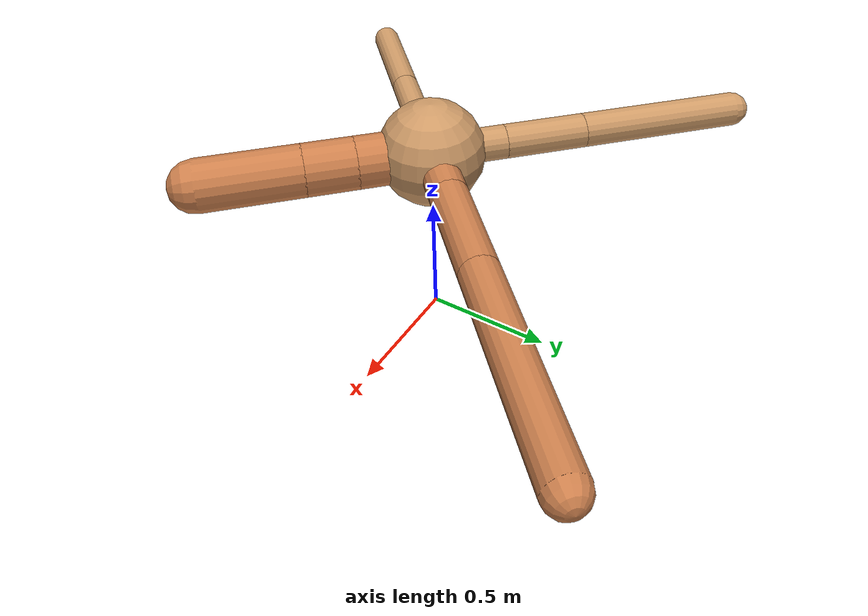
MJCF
<?xml version="1.0" ?>
<mujoco model="ant">

	<compiler angle="degree" coordinate="local" inertiafromgeom="true"/>

	<option integrator="RK4" timestep="0.01"/>

	<custom>

		<numeric data="0.0 0.0 0.55 1.0 0.0 0.0 0.0 0.0 1.0 0.0 -1.0 0.0 -1.0 0.0 1.0" name="init_qpos"/>

	</custom>

	<default>

		<joint armature="1" damping="1" limited="true"/>

		<geom conaffinity="0" condim="3" density="5.0" friction="1.5 0.1 0.1" margin="0.01" rgba="0.8 0.6 0.4 1"/>

	</default>

	<worldbody>

		<body name="torso" pos="0 0 0.75">

			<geom name="torso_geom" pos="0 0 0" size="0.2034293246344938" type="sphere"/>

			<!--joint armature="0" damping="0" limited="false" margin="0.01" name="root" pos="0 0 0" type="free"/-->

			<body name="front_left_leg" pos="0 0 0">

				<geom fromto="0 0 0 0.2 0.2 0" name="aux_1_geom" size="0.07254166942290198" type="capsule" rgba=".8 .5 .3 1"/>

				<body name="aux_1" pos="0.2 0.2 0">

					<joint axis="0 0 1" name="hip_1" pos="0.0 0.0 0.0" range="-40 40" type="hinge"/>

					<geom fromto="0 0 0 0.2906045185933022 0.2906045185933022 0" name="left_leg_geom" size="0.07254166942290198" type="capsule" rgba=".8 .5 .3 1"/>

					<body pos="0.2906045185933022 0.2906045185933022 0" name="front_left_foot">

						<joint axis="-1 1 0" name="ankle_1" pos="0.0 0.0 0.0" range="30 100" type="hinge"/>

						<geom fromto="0 0 0 0.5812090371866044 0.5812090371866044 0" name="left_ankle_geom" size="0.07254166942290198" type="capsule" rgba=".8 .5 .3 1"/>

					</body>

				</body>

			</body>

			<body name="front_right_leg" pos="0 0 0">

				<geom fromto="0 0 0 -0.2 0.2 0" name="aux_2_geom" size="0.0660254491054621" type="capsule"/>

				<body name="aux_2" pos="-0.2 0.2 0">

					<joint axis="0 0 1" name="hip_2" pos="0.0 0.0 0.0" range="-40 40" type="hinge"/>

					<geom fromto="0 0 0 -0.22108874089610714 0.22108874089610714 0" name="right_leg_geom" size="0.0660254491054621" type="capsule"/>

					<body pos="-0.22108874089610714 0.22108874089610714 0" name="front_right_foot">

						<joint axis="1 1 0" name="ankle_2" pos="0.0 0.0 0.0" range="-100 -30" type="hinge"/>

						<geom fromto="0 0 0 -0.4421774817922143 0.4421774817922143 0" name="right_ankle_geom" size="0.0660254491054621" type="capsule"/>

					</body>

				</body>

			</body>

			<body name="left_back_leg" pos="0 0 0">

				<geom fromto="0 0 0 -0.2 -0.2 0" name="aux_3_geom" size="0.052642065968321536" type="capsule"/>

				<body name="aux_3" pos="-0.2 -0.2 0">

					<joint axis="0 0 1" name="hip_3" pos="0.0 0.0 0.0" range="-40 40" type="hinge"/>

					<geom fromto="0 0 0 -0.15424641311256498 -0.15424641311256498 0" name="back_leg_geom" size="0.052642065968321536" type="capsule"/>

					<body pos="-0.15424641311256498 -0.15424641311256498 0" name="left_back_foot">

						<joint axis="-1 1 0" name="ankle_3" pos="0.0 0.0 0.0" range="-100 -30" type="hinge"/>

						<geom fromto="0 0 0 -0.30849282622512997 -0.30849282622512997 0" name="third_ankle_geom" size="0.052642065968321536" type="capsule"/>

					</body>

				</body>

			</body>

			<body name="right_back_leg" pos="0 0 0">

				<geom fromto="0 0 0 0.2 -0.2 0" name="aux_4_geom" size="0.1004400274302315" type="capsule" rgba=".8 .5 .3 1"/>

				<body name="aux_4" pos="0.2 -0.2 0">

					<joint axis="0 0 1" name="hip_4" pos="0.0 0.0 0.0" range="-40 40" type="hinge"/>

					<geom fromto="0 0 0 0.13484238228584236 -0.13484238228584236 0" name="rightback_leg_geom" size="0.1004400274302315" type="capsule" rgba=".8 .5 .3 1"/>

					<body pos="0.13484238228584236 -0.13484238228584236 0" name="right_back_foot">

						<joint axis="1 1 0" name="ankle_4" pos="0.0 0.0 0.0" range="30 100" type="hinge"/>

						<geom fromto="0 0 0 0.2696847645716847 -0.2696847645716847 0" name="fourth_ankle_geom" size="0.1004400274302315" type="capsule" rgba=".8 .5 .3 1"/>

					</body>

				</body>

			</body>

		</body>

	</worldbody>

	<actuator>

		<motor ctrllimited="true" ctrlrange="-1.0 1.0" joint="hip_4" gear="150"/>

		<motor ctrllimited="true" ctrlrange="-1.0 1.0" joint="ankle_4" gear="150"/>

		<motor ctrllimited="true" ctrlrange="-1.0 1.0" joint="hip_1" gear="150"/>

		<motor ctrllimited="true" ctrlrange="-1.0 1.0" joint="ankle_1" gear="150"/>

		<motor ctrllimited="true" ctrlrange="-1.0 1.0" joint="hip_2" gear="150"/>

		<motor ctrllimited="true" ctrlrange="-1.0 1.0" joint="ankle_2" gear="150"/>

		<motor ctrllimited="true" ctrlrange="-1.0 1.0" joint="hip_3" gear="150"/>

		<motor ctrllimited="true" ctrlrange="-1.0 1.0" joint="ankle_3" gear="150"/>

	</actuator>

</mujoco>
